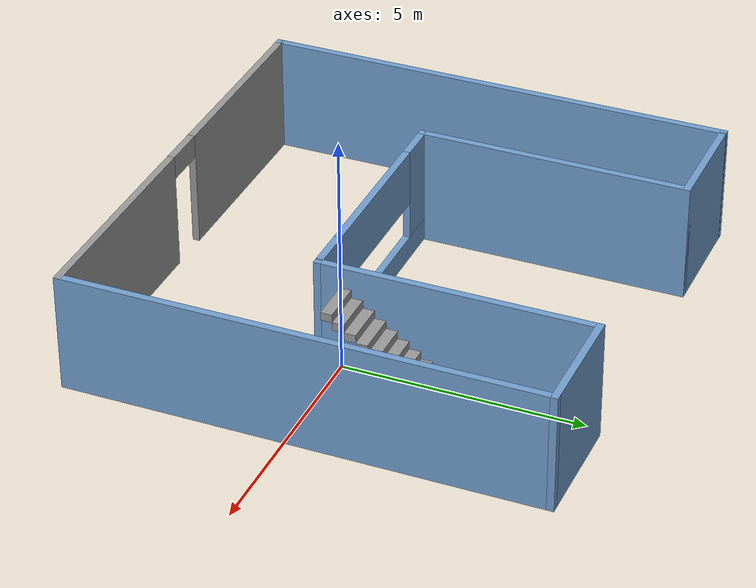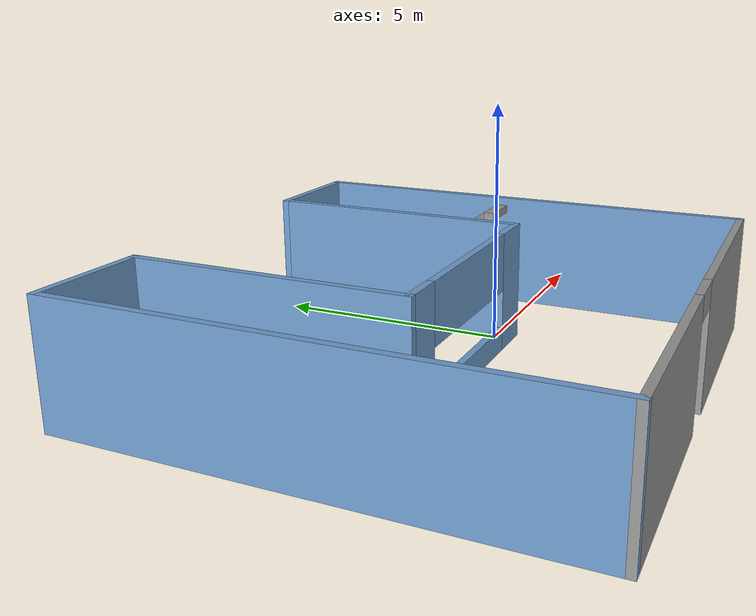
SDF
<?xml version='1.0'?>
<sdf version='1.6'>
  <model name='mybuilding'>
    <pose frame=''>-2.335 0.335 0 0 -0 0</pose>
    <link name='Stairs_1'>
      <visual name='Stairs_1_Visual_0'>
        <pose frame=''>3.6932 3.44715 0.083333 0 -0 0</pose>
        <geometry>
          <box>
            <size>0.879319 0.233333 0.166667</size>
          </box>
        </geometry>
        <material>
          <script>
            <uri>file://media/materials/scripts/gazebo.material</uri>
            <name>Gazebo/Grey</name>
          </script>
          <ambient>1 1 1 1</ambient>
        </material>
        <meta>
          <layer>0</layer>
        </meta>
      </visual>
      <collision name='Stairs_1_Collision_0'>
        <geometry>
          <box>
            <size>0.879319 0.233333 0.166667</size>
          </box>
        </geometry>
        <pose frame=''>3.6932 3.44715 0.083333 0 -0 0</pose>
      </collision>
      <visual name='Stairs_1_Visual_1'>
        <pose frame=''>3.6932 3.21382 0.25 0 -0 0</pose>
        <geometry>
          <box>
            <size>0.879319 0.233333 0.166667</size>
          </box>
        </geometry>
        <material>
          <script>
            <uri>file://media/materials/scripts/gazebo.material</uri>
            <name>Gazebo/Grey</name>
          </script>
          <ambient>1 1 1 1</ambient>
        </material>
        <meta>
          <layer>0</layer>
        </meta>
      </visual>
      <collision name='Stairs_1_Collision_1'>
        <geometry>
          <box>
            <size>0.879319 0.233333 0.166667</size>
          </box>
        </geometry>
        <pose frame=''>3.6932 3.21382 0.25 0 -0 0</pose>
      </collision>
      <visual name='Stairs_1_Visual_2'>
        <pose frame=''>3.6932 2.98049 0.416667 0 -0 0</pose>
        <geometry>
          <box>
            <size>0.879319 0.233333 0.166667</size>
          </box>
        </geometry>
        <material>
          <script>
            <uri>file://media/materials/scripts/gazebo.material</uri>
            <name>Gazebo/Grey</name>
          </script>
          <ambient>1 1 1 1</ambient>
        </material>
        <meta>
          <layer>0</layer>
        </meta>
      </visual>
      <collision name='Stairs_1_Collision_2'>
        <geometry>
          <box>
            <size>0.879319 0.233333 0.166667</size>
          </box>
        </geometry>
        <pose frame=''>3.6932 2.98049 0.416667 0 -0 0</pose>
      </collision>
      <visual name='Stairs_1_Visual_3'>
        <pose frame=''>3.6932 2.74715 0.583333 0 -0 0</pose>
        <geometry>
          <box>
            <size>0.879319 0.233333 0.166667</size>
          </box>
        </geometry>
        <material>
          <script>
            <uri>file://media/materials/scripts/gazebo.material</uri>
            <name>Gazebo/Grey</name>
          </script>
          <ambient>1 1 1 1</ambient>
        </material>
        <meta>
          <layer>0</layer>
        </meta>
      </visual>
      <collision name='Stairs_1_Collision_3'>
        <geometry>
          <box>
            <size>0.879319 0.233333 0.166667</size>
          </box>
        </geometry>
        <pose frame=''>3.6932 2.74715 0.583333 0 -0 0</pose>
      </collision>
      <visual name='Stairs_1_Visual_4'>
        <pose frame=''>3.6932 2.51382 0.75 0 -0 0</pose>
        <geometry>
          <box>
            <size>0.879319 0.233333 0.166667</size>
          </box>
        </geometry>
        <material>
          <script>
            <uri>file://media/materials/scripts/gazebo.material</uri>
            <name>Gazebo/Grey</name>
          </script>
          <ambient>1 1 1 1</ambient>
        </material>
        <meta>
          <layer>0</layer>
        </meta>
      </visual>
      <collision name='Stairs_1_Collision_4'>
        <geometry>
          <box>
            <size>0.879319 0.233333 0.166667</size>
          </box>
        </geometry>
        <pose frame=''>3.6932 2.51382 0.75 0 -0 0</pose>
      </collision>
      <visual name='Stairs_1_Visual_5'>
        <pose frame=''>3.6932 2.28049 0.916667 0 -0 0</pose>
        <geometry>
          <box>
            <size>0.879319 0.233333 0.166667</size>
          </box>
        </geometry>
        <material>
          <script>
            <uri>file://media/materials/scripts/gazebo.material</uri>
            <name>Gazebo/Grey</name>
          </script>
          <ambient>1 1 1 1</ambient>
        </material>
        <meta>
          <layer>0</layer>
        </meta>
      </visual>
      <collision name='Stairs_1_Collision_5'>
        <geometry>
          <box>
            <size>0.879319 0.233333 0.166667</size>
          </box>
        </geometry>
        <pose frame=''>3.6932 2.28049 0.916667 0 -0 0</pose>
      </collision>
      <visual name='Stairs_1_Visual_6'>
        <pose frame=''>3.6932 2.04715 1.08333 0 -0 0</pose>
        <geometry>
          <box>
            <size>0.879319 0.233333 0.166667</size>
          </box>
        </geometry>
        <material>
          <script>
            <uri>file://media/materials/scripts/gazebo.material</uri>
            <name>Gazebo/Grey</name>
          </script>
          <ambient>1 1 1 1</ambient>
        </material>
        <meta>
          <layer>0</layer>
        </meta>
      </visual>
      <collision name='Stairs_1_Collision_6'>
        <geometry>
          <box>
            <size>0.879319 0.233333 0.166667</size>
          </box>
        </geometry>
        <pose frame=''>3.6932 2.04715 1.08333 0 -0 0</pose>
      </collision>
      <visual name='Stairs_1_Visual_7'>
        <pose frame=''>3.6932 1.81382 1.25 0 -0 0</pose>
        <geometry>
          <box>
            <size>0.879319 0.233333 0.166667</size>
          </box>
        </geometry>
        <material>
          <script>
            <uri>file://media/materials/scripts/gazebo.material</uri>
            <name>Gazebo/Grey</name>
          </script>
          <ambient>1 1 1 1</ambient>
        </material>
        <meta>
          <layer>0</layer>
        </meta>
      </visual>
      <collision name='Stairs_1_Collision_7'>
        <geometry>
          <box>
            <size>0.879319 0.233333 0.166667</size>
          </box>
        </geometry>
        <pose frame=''>3.6932 1.81382 1.25 0 -0 0</pose>
      </collision>
      <visual name='Stairs_1_Visual_8'>
        <pose frame=''>3.6932 1.58049 1.41667 0 -0 0</pose>
        <geometry>
          <box>
            <size>0.879319 0.233333 0.166667</size>
          </box>
        </geometry>
        <material>
          <script>
            <uri>file://media/materials/scripts/gazebo.material</uri>
            <name>Gazebo/Grey</name>
          </script>
          <ambient>1 1 1 1</ambient>
        </material>
        <meta>
          <layer>0</layer>
        </meta>
      </visual>
      <collision name='Stairs_1_Collision_8'>
        <geometry>
          <box>
            <size>0.879319 0.233333 0.166667</size>
          </box>
        </geometry>
        <pose frame=''>3.6932 1.58049 1.41667 0 -0 0</pose>
      </collision>
      <visual name='Stairs_1_Visual_9'>
        <pose frame=''>3.6932 1.34715 1.58333 0 -0 0</pose>
        <geometry>
          <box>
            <size>0.879319 0.233333 0.166667</size>
          </box>
        </geometry>
        <material>
          <script>
            <uri>file://media/materials/scripts/gazebo.material</uri>
            <name>Gazebo/Grey</name>
          </script>
          <ambient>1 1 1 1</ambient>
        </material>
        <meta>
          <layer>0</layer>
        </meta>
      </visual>
      <collision name='Stairs_1_Collision_9'>
        <geometry>
          <box>
            <size>0.879319 0.233333 0.166667</size>
          </box>
        </geometry>
        <pose frame=''>3.6932 1.34715 1.58333 0 -0 0</pose>
      </collision>
      <visual name='Stairs_1_Visual_10'>
        <pose frame=''>3.6932 1.11382 1.75 0 -0 0</pose>
        <geometry>
          <box>
            <size>0.879319 0.233333 0.166667</size>
          </box>
        </geometry>
        <material>
          <script>
            <uri>file://media/materials/scripts/gazebo.material</uri>
            <name>Gazebo/Grey</name>
          </script>
          <ambient>1 1 1 1</ambient>
        </material>
        <meta>
          <layer>0</layer>
        </meta>
      </visual>
      <collision name='Stairs_1_Collision_10'>
        <geometry>
          <box>
            <size>0.879319 0.233333 0.166667</size>
          </box>
        </geometry>
        <pose frame=''>3.6932 1.11382 1.75 0 -0 0</pose>
      </collision>
      <visual name='Stairs_1_Visual_11'>
        <pose frame=''>3.6932 0.880486 1.91667 0 -0 0</pose>
        <geometry>
          <box>
            <size>0.879319 0.233333 0.166667</size>
          </box>
        </geometry>
        <material>
          <script>
            <uri>file://media/materials/scripts/gazebo.material</uri>
            <name>Gazebo/Grey</name>
          </script>
          <ambient>1 1 1 1</ambient>
        </material>
        <meta>
          <layer>0</layer>
        </meta>
      </visual>
      <collision name='Stairs_1_Collision_11'>
        <geometry>
          <box>
            <size>0.879319 0.233333 0.166667</size>
          </box>
        </geometry>
        <pose frame=''>3.6932 0.880486 1.91667 0 -0 0</pose>
      </collision>
      <visual name='Stairs_1_Visual_12'>
        <pose frame=''>3.6932 0.647152 2.08333 0 -0 0</pose>
        <geometry>
          <box>
            <size>0.879319 0.233333 0.166667</size>
          </box>
        </geometry>
        <material>
          <script>
            <uri>file://media/materials/scripts/gazebo.material</uri>
            <name>Gazebo/Grey</name>
          </script>
          <ambient>1 1 1 1</ambient>
        </material>
        <meta>
          <layer>0</layer>
        </meta>
      </visual>
      <collision name='Stairs_1_Collision_12'>
        <geometry>
          <box>
            <size>0.879319 0.233333 0.166667</size>
          </box>
        </geometry>
        <pose frame=''>3.6932 0.647152 2.08333 0 -0 0</pose>
      </collision>
      <visual name='Stairs_1_Visual_13'>
        <pose frame=''>3.6932 0.413819 2.25 0 -0 0</pose>
        <geometry>
          <box>
            <size>0.879319 0.233333 0.166667</size>
          </box>
        </geometry>
        <material>
          <script>
            <uri>file://media/materials/scripts/gazebo.material</uri>
            <name>Gazebo/Grey</name>
          </script>
          <ambient>1 1 1 1</ambient>
        </material>
        <meta>
          <layer>0</layer>
        </meta>
      </visual>
      <collision name='Stairs_1_Collision_13'>
        <geometry>
          <box>
            <size>0.879319 0.233333 0.166667</size>
          </box>
        </geometry>
        <pose frame=''>3.6932 0.413819 2.25 0 -0 0</pose>
      </collision>
      <visual name='Stairs_1_Visual_14'>
        <pose frame=''>3.6932 0.180486 2.41667 0 -0 0</pose>
        <geometry>
          <box>
            <size>0.879319 0.233333 0.166667</size>
          </box>
        </geometry>
        <material>
          <script>
            <uri>file://media/materials/scripts/gazebo.material</uri>
            <name>Gazebo/Grey</name>
          </script>
          <ambient>1 1 1 1</ambient>
        </material>
        <meta>
          <layer>0</layer>
        </meta>
      </visual>
      <collision name='Stairs_1_Collision_14'>
        <geometry>
          <box>
            <size>0.879319 0.233333 0.166667</size>
          </box>
        </geometry>
        <pose frame=''>3.6932 0.180486 2.41667 0 -0 0</pose>
      </collision>
    </link>
    <link name='Wall_0'>
      <pose frame=''>0 -4.925 0 0 -0 3.14159</pose>
      <visual name='Wall_0_Visual_0'>
        <pose frame=''>-2.62058 0 1.25 0 -0 0</pose>
        <geometry>
          <box>
            <size>4.75883 0.15 2.5</size>
          </box>
        </geometry>
        <material>
          <script>
            <uri>file://media/materials/scripts/gazebo.material</uri>
            <name>Gazebo/Grey</name>
          </script>
          <ambient>1 1 1 1</ambient>
        </material>
        <meta>
          <layer>0</layer>
        </meta>
      </visual>
      <collision name='Wall_0_Collision_0'>
        <geometry>
          <box>
            <size>4.75883 0.15 2.5</size>
          </box>
        </geometry>
        <pose frame=''>-2.62058 0 1.25 0 -0 0</pose>
      </collision>
      <visual name='Wall_0_Visual_1'>
        <pose frame=''>2.82942 0 1.25 0 -0 0</pose>
        <geometry>
          <box>
            <size>4.34117 0.15 2.5</size>
          </box>
        </geometry>
        <material>
          <script>
            <uri>file://media/materials/scripts/gazebo.material</uri>
            <name>Gazebo/Grey</name>
          </script>
          <ambient>1 1 1 1</ambient>
        </material>
        <meta>
          <layer>0</layer>
        </meta>
      </visual>
      <collision name='Wall_0_Collision_1'>
        <geometry>
          <box>
            <size>4.34117 0.15 2.5</size>
          </box>
        </geometry>
        <pose frame=''>2.82942 0 1.25 0 -0 0</pose>
      </collision>
      <visual name='Wall_0_Visual_2'>
        <pose frame=''>0.208832 0 2.25 0 -0 0</pose>
        <geometry>
          <box>
            <size>0.9 0.15 0.5</size>
          </box>
        </geometry>
        <material>
          <script>
            <uri>file://media/materials/scripts/gazebo.material</uri>
            <name>Gazebo/Grey</name>
          </script>
          <ambient>1 1 1 1</ambient>
        </material>
        <meta>
          <layer>0</layer>
        </meta>
      </visual>
      <collision name='Wall_0_Collision_2'>
        <geometry>
          <box>
            <size>0.9 0.15 0.5</size>
          </box>
        </geometry>
        <pose frame=''>0.208832 0 2.25 0 -0 0</pose>
      </collision>
    </link>
    <link name='Wall_10'>
      <pose frame=''>0.025 -0.675 0 0 -0 3.14159</pose>
      <visual name='Wall_10_Visual_0'>
        <pose frame=''>-2.13979 0 1.25 0 -0 0</pose>
        <geometry>
          <box>
            <size>0.970428 0.15 2.5</size>
          </box>
        </geometry>
        <material>
          <script>
            <uri>file://media/materials/scripts/gazebo.material</uri>
            <name>Gazebo/Grey</name>
          </script>
          <ambient>0.447059 0.623529 0.811765 1</ambient>
        </material>
        <meta>
          <layer>0</layer>
        </meta>
      </visual>
      <collision name='Wall_10_Collision_0'>
        <geometry>
          <box>
            <size>0.970428 0.15 2.5</size>
          </box>
        </geometry>
        <pose frame=''>-2.13979 0 1.25 0 -0 0</pose>
      </collision>
      <visual name='Wall_10_Visual_1'>
        <pose frame=''>0.485214 0 0.25 0 -0 0</pose>
        <geometry>
          <box>
            <size>4.27957 0.15 0.5</size>
          </box>
        </geometry>
        <material>
          <script>
            <uri>file://media/materials/scripts/gazebo.material</uri>
            <name>Gazebo/Grey</name>
          </script>
          <ambient>0.447059 0.623529 0.811765 1</ambient>
        </material>
        <meta>
          <layer>0</layer>
        </meta>
      </visual>
      <collision name='Wall_10_Collision_1'>
        <geometry>
          <box>
            <size>4.27957 0.15 0.5</size>
          </box>
        </geometry>
        <pose frame=''>0.485214 0 0.25 0 -0 0</pose>
      </collision>
      <visual name='Wall_10_Visual_2'>
        <pose frame=''>2.1926 0 1.5 0 -0 0</pose>
        <geometry>
          <box>
            <size>0.864808 0.15 2</size>
          </box>
        </geometry>
        <material>
          <script>
            <uri>file://media/materials/scripts/gazebo.material</uri>
            <name>Gazebo/Grey</name>
          </script>
          <ambient>0.447059 0.623529 0.811765 1</ambient>
        </material>
        <meta>
          <layer>0</layer>
        </meta>
      </visual>
      <collision name='Wall_10_Collision_2'>
        <geometry>
          <box>
            <size>0.864808 0.15 2</size>
          </box>
        </geometry>
        <pose frame=''>2.1926 0 1.5 0 -0 0</pose>
      </collision>
      <visual name='Wall_10_Visual_3'>
        <pose frame=''>0.05281 0 1.9 0 -0 0</pose>
        <geometry>
          <box>
            <size>3.41476 0.15 1.2</size>
          </box>
        </geometry>
        <material>
          <script>
            <uri>file://media/materials/scripts/gazebo.material</uri>
            <name>Gazebo/Grey</name>
          </script>
          <ambient>0.447059 0.623529 0.811765 1</ambient>
        </material>
        <meta>
          <layer>0</layer>
        </meta>
      </visual>
      <collision name='Wall_10_Collision_3'>
        <geometry>
          <box>
            <size>3.41476 0.15 1.2</size>
          </box>
        </geometry>
        <pose frame=''>0.05281 0 1.9 0 -0 0</pose>
      </collision>
    </link>
    <link name='Wall_12'>
      <collision name='Wall_12_Collision'>
        <geometry>
          <box>
            <size>5.75 0.15 2.5</size>
          </box>
        </geometry>
        <pose frame=''>0 0 1.25 0 -0 0</pose>
      </collision>
      <visual name='Wall_12_Visual'>
        <pose frame=''>0 0 1.25 0 -0 0</pose>
        <geometry>
          <box>
            <size>5.75 0.15 2.5</size>
          </box>
        </geometry>
        <material>
          <script>
            <uri>file://media/materials/scripts/gazebo.material</uri>
            <name>Gazebo/Grey</name>
          </script>
          <ambient>0.447059 0.623529 0.811765 1</ambient>
        </material>
        <meta>
          <layer>0</layer>
        </meta>
      </visual>
      <pose frame=''>-2.575 2.125 0 0 -0 -1.5708</pose>
    </link>
    <link name='Wall_3'>
      <collision name='Wall_3_Collision'>
        <geometry>
          <box>
            <size>10 0.15 2.5</size>
          </box>
        </geometry>
        <pose frame=''>0 0 1.25 0 -0 0</pose>
      </collision>
      <visual name='Wall_3_Visual'>
        <pose frame=''>0 0 1.25 0 -0 0</pose>
        <geometry>
          <box>
            <size>10 0.15 2.5</size>
          </box>
        </geometry>
        <material>
          <script>
            <uri>file://media/materials/scripts/gazebo.material</uri>
            <name>Gazebo/Grey</name>
          </script>
          <ambient>0.447059 0.623529 0.811765 1</ambient>
        </material>
        <meta>
          <layer>0</layer>
        </meta>
      </visual>
      <pose frame=''>-4.925 -0 0 0 -0 1.5708</pose>
    </link>
    <link name='Wall_5'>
      <collision name='Wall_5_Collision'>
        <geometry>
          <box>
            <size>2.5 0.15 2.5</size>
          </box>
        </geometry>
        <pose frame=''>0 0 1.25 0 -0 0</pose>
      </collision>
      <visual name='Wall_5_Visual'>
        <pose frame=''>0 0 1.25 0 -0 0</pose>
        <geometry>
          <box>
            <size>2.5 0.15 2.5</size>
          </box>
        </geometry>
        <material>
          <script>
            <uri>file://media/materials/scripts/gazebo.material</uri>
            <name>Gazebo/Grey</name>
          </script>
          <ambient>0.447059 0.623529 0.811765 1</ambient>
        </material>
        <meta>
          <layer>0</layer>
        </meta>
      </visual>
      <pose frame=''>-3.75 4.925 0 0 -0 0</pose>
    </link>
    <link name='Wall_7'>
      <collision name='Wall_7_Collision'>
        <geometry>
          <box>
            <size>10 0.15 2.5</size>
          </box>
        </geometry>
        <pose frame=''>0 0 1.25 0 -0 0</pose>
      </collision>
      <visual name='Wall_7_Visual'>
        <pose frame=''>0 0 1.25 0 -0 0</pose>
        <geometry>
          <box>
            <size>10 0.15 2.5</size>
          </box>
        </geometry>
        <material>
          <script>
            <uri>file://media/materials/scripts/gazebo.material</uri>
            <name>Gazebo/Grey</name>
          </script>
          <ambient>0.447059 0.623529 0.811765 1</ambient>
        </material>
        <meta>
          <layer>0</layer>
        </meta>
      </visual>
      <pose frame=''>4.925 -0 0 0 -0 1.5708</pose>
    </link>
    <link name='Wall_8'>
      <collision name='Wall_8_Collision'>
        <geometry>
          <box>
            <size>2.5 0.15 2.5</size>
          </box>
        </geometry>
        <pose frame=''>0 0 1.25 0 -0 0</pose>
      </collision>
      <visual name='Wall_8_Visual'>
        <pose frame=''>0 0 1.25 0 -0 0</pose>
        <geometry>
          <box>
            <size>2.5 0.15 2.5</size>
          </box>
        </geometry>
        <material>
          <script>
            <uri>file://media/materials/scripts/gazebo.material</uri>
            <name>Gazebo/Grey</name>
          </script>
          <ambient>0.447059 0.623529 0.811765 1</ambient>
        </material>
        <meta>
          <layer>0</layer>
        </meta>
      </visual>
      <pose frame=''>3.75 4.925 0 0 -0 3.14159</pose>
    </link>
    <link name='Wall_9'>
      <collision name='Wall_9_Collision'>
        <geometry>
          <box>
            <size>5.75 0.15 2.5</size>
          </box>
        </geometry>
        <pose frame=''>0 0 1.25 0 -0 0</pose>
      </collision>
      <visual name='Wall_9_Visual'>
        <pose frame=''>0 0 1.25 0 -0 0</pose>
        <geometry>
          <box>
            <size>5.75 0.15 2.5</size>
          </box>
        </geometry>
        <material>
          <script>
            <uri>file://media/materials/scripts/gazebo.material</uri>
            <name>Gazebo/Grey</name>
          </script>
          <ambient>0.447059 0.623529 0.811765 1</ambient>
        </material>
        <meta>
          <layer>0</layer>
        </meta>
      </visual>
      <pose frame=''>2.575 2.125 0 0 -0 -1.5708</pose>
    </link>
    <static>1</static>
  </model>
</sdf>
